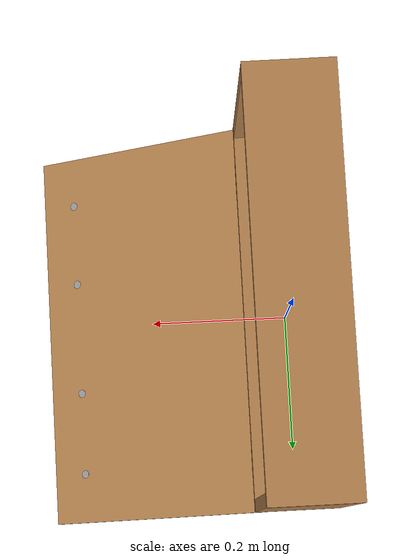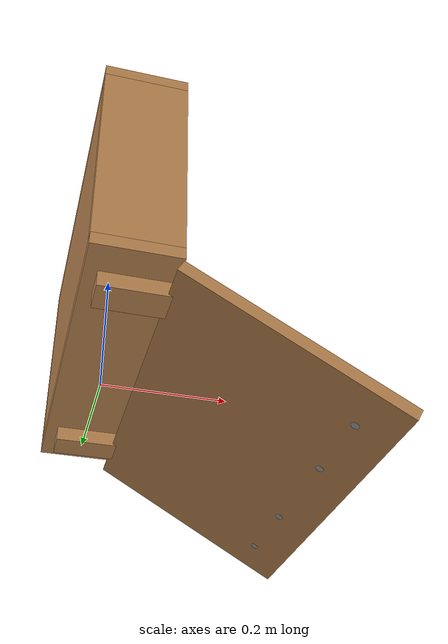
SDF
<?xml version="1.0" ?>
<sdf version='1.6'>
    <model name='wooden_case'>
      <link name='base'>
        <pose frame=''>0 0 0.024 0 -0 0</pose>
        <inertial>
          <pose frame=''>-0.022184 0 0.171592 0 -0 0</pose>
          <mass>3.96264</mass>
          <inertia>
            <ixx>0.213536</ixx>
            <ixy>0</ixy>
            <ixz>0.000779377</ixz>
            <iyy>0.0708943</iyy>
            <iyz>0</iyz>
            <izz>0.154604</izz>
          </inertia>
        </inertial>
        <collision name='collision_back'>
          <pose frame=''>-0.053975 0 0.1778 0 -0 0</pose>
          <geometry>
            <box>
              <size>0.01905 0.5461 0.3175</size>
            </box>
          </geometry>
          <surface>
            <contact>
              <poissons_ratio>0.347</poissons_ratio>
              <elastic_modulus>8.8e+09</elastic_modulus>
              <ode>
                <kp>100000</kp>
                <kd>100</kd>
                <max_vel>100</max_vel>
                <min_depth>0.001</min_depth>
              </ode>
            </contact>
            <friction>
              <ode>
                <mu>3</mu>
                <mu2>3</mu2>
              </ode>
              <torsional>
                <coefficient>1</coefficient>
                <use_patch_radius>0</use_patch_radius>
                <surface_radius>0.01</surface_radius>
                <ode/>
              </torsional>
              <ode/>
            </friction>
            <bounce/>
          </surface>
          <max_contacts>10</max_contacts>
        </collision>
        <visual name='visual_back'>
          <pose frame=''>-0.053975 0 0.1778 0 -0 0</pose>
          <geometry>
            <box>
              <size>0.01905 0.5461 0.3175</size>
            </box>
          </geometry>
          <material>
            <script>
              <uri>file://media/materials/scripts/gazebo.material</uri>
              <name>Gazebo/Wood</name>
            </script>
          </material>
        </visual>
        <collision name='collision_bottom'>
          <pose frame=''>0 0 0.009525 0 -0 0</pose>
          <geometry>
            <box>
              <size>0.127 0.5842 0.01905</size>
            </box>
          </geometry>
          <surface>
            <contact>
              <poissons_ratio>0.347</poissons_ratio>
              <elastic_modulus>8.8e+09</elastic_modulus>
              <ode>
                <kp>100000</kp>
                <kd>100</kd>
                <max_vel>100</max_vel>
                <min_depth>0.001</min_depth>
              </ode>
            </contact>
            <friction>
              <torsional>
                <coefficient>1</coefficient>
                <use_patch_radius>0</use_patch_radius>
                <surface_radius>0.01</surface_radius>
                <ode/>
              </torsional>
              <ode/>
            </friction>
            <bounce/>
          </surface>
          <max_contacts>10</max_contacts>
        </collision>
        <visual name='visual_bottom'>
          <pose frame=''>0 0 0.009525 0 -0 0</pose>
          <geometry>
            <box>
              <size>0.127 0.5842 0.01905</size>
            </box>
          </geometry>
          <material>
            <script>
              <uri>file://media/materials/scripts/gazebo.material</uri>
              <name>Gazebo/Wood</name>
            </script>
          </material>
        </visual>
        <collision name='collision_top'>
          <pose frame=''>0 0 0.346075 0 -0 0</pose>
          <geometry>
            <box>
              <size>0.127 0.5842 0.01905</size>
            </box>
          </geometry>
          <surface>
            <contact>
              <poissons_ratio>0.347</poissons_ratio>
              <elastic_modulus>8.8e+09</elastic_modulus>
              <ode>
                <kp>100000</kp>
                <kd>100</kd>
                <max_vel>100</max_vel>
                <min_depth>0.001</min_depth>
              </ode>
            </contact>
            <friction>
              <torsional>
                <coefficient>1</coefficient>
                <use_patch_radius>0</use_patch_radius>
                <surface_radius>0.01</surface_radius>
                <ode/>
              </torsional>
              <ode/>
            </friction>
            <bounce/>
          </surface>
          <max_contacts>10</max_contacts>
        </collision>
        <visual name='visual_top'>
          <pose frame=''>0 0 0.346075 0 -0 0</pose>
          <geometry>
            <box>
              <size>0.127 0.5842 0.01905</size>
            </box>
          </geometry>
          <material>
            <script>
              <uri>file://media/materials/scripts/gazebo.material</uri>
              <name>Gazebo/Wood</name>
            </script>
          </material>
        </visual>
        <collision name='collision_left'>
          <pose frame=''>0 -0.282575 0.1778 0 -0 0</pose>
          <geometry>
            <box>
              <size>0.127 0.01905 0.3175</size>
            </box>
          </geometry>
          <surface>
            <contact>
              <poissons_ratio>0.347</poissons_ratio>
              <elastic_modulus>8.8e+09</elastic_modulus>
              <ode>
                <kp>100000</kp>
                <kd>100</kd>
                <max_vel>100</max_vel>
                <min_depth>0.001</min_depth>
              </ode>
            </contact>
            <friction>
              <torsional>
                <coefficient>1</coefficient>
                <use_patch_radius>0</use_patch_radius>
                <surface_radius>0.01</surface_radius>
                <ode/>
              </torsional>
              <ode/>
            </friction>
            <bounce/>
          </surface>
          <max_contacts>10</max_contacts>
        </collision>
        <visual name='visual_left'>
          <pose frame=''>0 -0.282575 0.1778 0 -0 0</pose>
          <geometry>
            <box>
              <size>0.127 0.01905 0.3175</size>
            </box>
          </geometry>
          <material>
            <script>
              <uri>file://media/materials/scripts/gazebo.material</uri>
              <name>Gazebo/Wood</name>
            </script>
          </material>
        </visual>
        <collision name='collision_right'>
          <pose frame=''>0 0.282575 0.1778 0 -0 0</pose>
          <geometry>
            <box>
              <size>0.127 0.01905 0.3175</size>
            </box>
          </geometry>
          <surface>
            <contact>
              <poissons_ratio>0.347</poissons_ratio>
              <elastic_modulus>8.8e+09</elastic_modulus>
              <ode>
                <kp>100000</kp>
                <kd>100</kd>
                <max_vel>100</max_vel>
                <min_depth>0.001</min_depth>
              </ode>
            </contact>
            <friction>
              <torsional>
                <coefficient>1</coefficient>
                <use_patch_radius>0</use_patch_radius>
                <surface_radius>0.01</surface_radius>
                <ode/>
              </torsional>
              <ode/>
            </friction>
            <bounce/>
          </surface>
          <max_contacts>10</max_contacts>
        </collision>
        <visual name='visual_right'>
          <pose frame=''>0 0.282575 0.1778 0 -0 0</pose>
          <geometry>
            <box>
              <size>0.127 0.01905 0.3175</size>
            </box>
          </geometry>
          <material>
            <script>
              <uri>file://media/materials/scripts/gazebo.material</uri>
              <name>Gazebo/Wood</name>
            </script>
          </material>
        </visual>
        <collision name='collision_block_left'>
          <pose frame=''>0.0095 -0.2151 -0.012 0 -0 0</pose>
          <geometry>
            <box>
              <size>0.108 0.05 0.024</size>
            </box>
          </geometry>
          <surface>
            <contact>
              <poissons_ratio>0.347</poissons_ratio>
              <elastic_modulus>8.8e+09</elastic_modulus>
              <ode>
                <kp>100000</kp>
                <kd>100</kd>
                <max_vel>100</max_vel>
                <min_depth>0.001</min_depth>
              </ode>
            </contact>
            <friction>
              <torsional>
                <coefficient>1</coefficient>
                <use_patch_radius>0</use_patch_radius>
                <surface_radius>0.01</surface_radius>
                <ode/>
              </torsional>
              <ode/>
            </friction>
            <bounce/>
          </surface>
          <max_contacts>10</max_contacts>
        </collision>
        <visual name='visual_block_left'>
          <pose frame=''>0.0095 -0.2151 -0.012 0 -0 0</pose>
          <geometry>
            <box>
              <size>0.108 0.05 0.024</size>
            </box>
          </geometry>
          <material>
            <script>
              <uri>file://media/materials/scripts/gazebo.material</uri>
              <name>Gazebo/Wood</name>
            </script>
          </material>
        </visual>
        <collision name='collision_block_right'>
          <pose frame=''>0.0095 0.2151 -0.012 0 -0 0</pose>
          <geometry>
            <box>
              <size>0.108 0.05 0.024</size>
            </box>
          </geometry>
          <surface>
            <contact>
              <poissons_ratio>0.347</poissons_ratio>
              <elastic_modulus>8.8e+09</elastic_modulus>
              <ode>
                <kp>100000</kp>
                <kd>100</kd>
                <max_vel>100</max_vel>
                <min_depth>0.001</min_depth>
              </ode>
            </contact>
            <friction>
              <torsional>
                <coefficient>1</coefficient>
                <use_patch_radius>0</use_patch_radius>
                <surface_radius>0.01</surface_radius>
                <ode/>
              </torsional>
              <ode/>
            </friction>
            <bounce/>
          </surface>
          <max_contacts>10</max_contacts>
        </collision>
        <visual name='visual_block_right'>
          <pose frame=''>0.0095 0.2151 -0.012 0 -0 0</pose>
          <geometry>
            <box>
              <size>0.108 0.05 0.024</size>
            </box>
          </geometry>
          <material>
            <script>
              <uri>file://media/materials/scripts/gazebo.material</uri>
              <name>Gazebo/Wood</name>
            </script>
          </material>
        </visual>
        <self_collide>0</self_collide>
        <enable_wind>0</enable_wind>
        <kinematic>0</kinematic>
      </link>
      <link name='lid'>
        <pose frame=''>0.210430 0.000001 -0.076823 0 0.523601 0</pose>
        <inertial>
          <mass>0.97874</mass>
          <inertia>
            <ixx>0.0563367</ixx>
            <ixy>0</ixy>
            <ixz>0</ixz>
            <iyy>0.020911</iyy>
            <iyz>0</iyz>
            <izz>0.0771281</izz>
          </inertia>
        </inertial>
        <collision name='collision'>
          <geometry>
            <box>
              <size>0.3556 0.5842 0.01905</size>
            </box>
          </geometry>
          <surface>
            <contact>
              <poissons_ratio>0.347</poissons_ratio>
              <elastic_modulus>8.8e+09</elastic_modulus>
              <ode>
                <kp>100000</kp>
                <kd>100</kd>
                <max_vel>100</max_vel>
                <min_depth>0.001</min_depth>
              </ode>
            </contact>
            <friction>
              <torsional>
                <coefficient>1</coefficient>
                <use_patch_radius>0</use_patch_radius>
                <surface_radius>0.01</surface_radius>
                <ode/>
              </torsional>
              <ode/>
            </friction>
            <bounce/>
          </surface>
          <max_contacts>10</max_contacts>
        </collision>
        <visual name='visual'>
          <geometry>
            <box>
              <size>0.3556 0.5842 0.01905</size>
            </box>
          </geometry>
          <material>
            <script>
              <uri>file://media/materials/scripts/gazebo.material</uri>
              <name>Gazebo/Wood</name>
            </script>
          </material>
        </visual>
        <visual name='tee_nut_1'>
          <pose frame=''>0.122 -0.216 0 0 -0 0</pose>
          <geometry>
            <cylinder>
              <radius>0.00635</radius>
              <length>0.0192405</length>
            </cylinder>
          </geometry>
          <material>
            <script>
              <uri>file://media/materials/scripts/gazebo.material</uri>
              <name>Gazebo/Grey</name>
            </script>
          </material>
        </visual>
        <visual name='tee_nut_2'>
          <pose frame=''>0.122 -0.088 0 0 -0 0</pose>
          <geometry>
            <cylinder>
              <radius>0.00635</radius>
              <length>0.0192405</length>
            </cylinder>
          </geometry>
          <material>
            <script>
              <uri>file://media/materials/scripts/gazebo.material</uri>
              <name>Gazebo/Grey</name>
            </script>
          </material>
        </visual>
        <visual name='tee_nut_3'>
          <pose frame=''>0.122 0.088 0 0 -0 0</pose>
          <geometry>
            <cylinder>
              <radius>0.00635</radius>
             <length>0.0192405</length>
            </cylinder>
          </geometry>
          <material>
            <script>
              <uri>file://media/materials/scripts/gazebo.material</uri>
              <name>Gazebo/Grey</name>
            </script>
          </material>
        </visual>
        <visual name='tee_nut_4'>
          <pose frame=''>0.122 0.216 0 0 -0 0</pose>
          <geometry>
            <cylinder>
              <radius>0.00635</radius>
              <length>0.0192405</length>
            </cylinder>
          </geometry>
          <material>
            <script>
              <uri>file://media/materials/scripts/gazebo.material</uri>
              <name>Gazebo/Grey</name>
            </script>
          </material>
        </visual>
        <self_collide>0</self_collide>
        <enable_wind>0</enable_wind>
        <kinematic>0</kinematic>
      </link>
      <joint name='lid_hinge' type='revolute'>
        <pose frame=''>-0.1778 0 0.01905 0 -0 0</pose>
        <parent>base</parent>
        <child>lid</child>
        <axis>
          <xyz>0 1 0</xyz>
          <limit>
            <upper>0.5</upper>
            <lower>-1.5708</lower>
          </limit>
          <use_parent_model_frame>0</use_parent_model_frame>
          <dynamics>
            <spring_reference>0</spring_reference>
            <spring_stiffness>0</spring_stiffness>
          </dynamics>
        </axis>
      </joint>
    </model>
</sdf>
